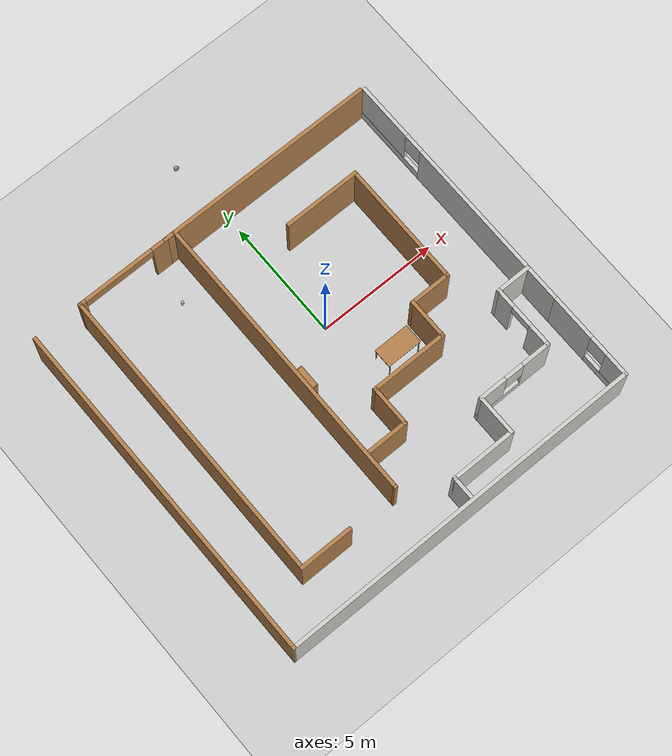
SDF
<sdf version="1.6">
 <world name="default">
  <model name="ground_plane">
   <static>1</static>
   <link name="link">
    <collision name="collision">
     <geometry><plane><normal>0 0 1</normal><size>100 100</size></plane></geometry>
     <surface><friction><ode><mu>100</mu><mu2>50</mu2></ode></friction></surface>
    </collision>
    <visual name="visual">
     <cast_shadows>0</cast_shadows>
     <geometry><plane><normal>0 0 1</normal><size>100 100</size></plane></geometry>
     <material>
      <script><uri>file://media/materials/scripts/gazebo.material</uri><name>Gazebo/Grey</name></script>
     </material>
    </visual>
   </link>
  </model>
  <model name="beer">
   <link name="link">
    <pose>0 0 0.115 0 -0 0</pose>
    <inertial>
     <mass>0.39</mass>
     <inertia><ixx>0.00058</ixx><ixy>0</ixy><ixz>0</ixz><iyy>0.00058</iyy><iyz>0</iyz><izz>0.00019</izz></inertia>
    </inertial>
    <collision name="collision">
     <geometry><cylinder><radius>0.055</radius><length>0.23</length></cylinder></geometry>
    </collision>
    <visual name="visual">
     <geometry><cylinder><radius>0.055</radius><length>0.23</length></cylinder></geometry>
     <material>
      <script>
       <uri>model://beer/materials/scripts</uri>
       <uri>model://beer/materials/textures</uri>
       <name>Beer/Diffuse</name>
      </script>
     </material>
    </visual>
   </link>
   <pose>-3.40388 4.09892 -2e-06 0 0 -5.8e-05</pose>
  </model>
  <model name="table">
   <static>1</static>
   <link name="link">
    <collision name="surface">
     <pose>0 0 1 0 -0 0</pose>
     <geometry><box><size>1.5 0.8 0.03</size></box></geometry>
     <surface><friction><ode><mu>0.6</mu><mu2>0.6</mu2></ode></friction></surface>
    </collision>
    <visual name="visual1">
     <pose>0 0 1 0 -0 0</pose>
     <geometry><box><size>1.5 0.8 0.03</size></box></geometry>
     <material>
      <script><uri>file://media/materials/scripts/gazebo.material</uri><name>Gazebo/Wood</name></script>
     </material>
    </visual>
    <collision name="front_left_leg">
     <pose>0.68 0.38 0.5 0 -0 0</pose>
     <geometry><cylinder><radius>0.02</radius><length>1</length></cylinder></geometry>
    </collision>
    <visual name="front_left_leg">
     <pose>0.68 0.38 0.5 0 -0 0</pose>
     <geometry><cylinder><radius>0.02</radius><length>1</length></cylinder></geometry>
     <material>
      <script><uri>file://media/materials/scripts/gazebo.material</uri><name>Gazebo/Grey</name></script>
     </material>
    </visual>
    <collision name="front_right_leg">
     <pose>0.68 -0.38 0.5 0 -0 0</pose>
     <geometry><cylinder><radius>0.02</radius><length>1</length></cylinder></geometry>
    </collision>
    <visual name="front_right_leg">
     <pose>0.68 -0.38 0.5 0 -0 0</pose>
     <geometry><cylinder><radius>0.02</radius><length>1</length></cylinder></geometry>
     <material>
      <script><uri>file://media/materials/scripts/gazebo.material</uri><name>Gazebo/Grey</name></script>
     </material>
    </visual>
    <collision name="back_right_leg">
     <pose>-0.68 -0.38 0.5 0 -0 0</pose>
     <geometry><cylinder><radius>0.02</radius><length>1</length></cylinder></geometry>
    </collision>
    <visual name="back_right_leg">
     <pose>-0.68 -0.38 0.5 0 -0 0</pose>
     <geometry><cylinder><radius>0.02</radius><length>1</length></cylinder></geometry>
     <material>
      <script><uri>file://media/materials/scripts/gazebo.material</uri><name>Gazebo/Grey</name></script>
     </material>
    </visual>
    <collision name="back_left_leg">
     <pose>-0.68 0.38 0.5 0 -0 0</pose>
     <geometry><cylinder><radius>0.02</radius><length>1</length></cylinder></geometry>
    </collision>
    <visual name="back_left_leg">
     <pose>-0.68 0.38 0.5 0 -0 0</pose>
     <geometry><cylinder><radius>0.02</radius><length>1</length></cylinder></geometry>
     <material>
      <script><uri>file://media/materials/scripts/gazebo.material</uri><name>Gazebo/Grey</name></script>
     </material>
    </visual>
   </link>
   <pose>1.37155 -2.41837 0 0 -0 0</pose>
  </model>
  <model name="bookshelf">
   <link name="link">
    <pose>0 0 0 0 -0 1.5707</pose>
    <inertial>
     <mass>1</mass>
     <inertia><ixx>1</ixx><ixy>0</ixy><ixz>0</ixz><iyy>1</iyy><iyz>0</iyz><izz>1</izz></inertia>
    </inertial>
    <visual name="visual1">
     <pose>0 0.005 0.6 0 -0 0</pose>
     <geometry><box><size>0.9 0.01 1.2</size></box></geometry>
     <material>
      <script><uri>file://media/materials/scripts/gazebo.material</uri><name>Gazebo/Wood</name></script>
      <shader type="pixel"><normal_map>__default__</normal_map></shader>
      <ambient>1 1 1 1</ambient>
      <diffuse>1 1 1 1</diffuse>
      <specular>0.2 0.2 0.2 1</specular>
      <emissive>0 0 0 1</emissive>
     </material>
    </visual>
    <visual name="visual2">
     <pose>0.45 -0.195 0.6 0 -0 0</pose>
     <geometry><box><size>0.02 0.4 1.2</size></box></geometry>
     <material>
      <script><uri>file://media/materials/scripts/gazebo.material</uri><name>Gazebo/Wood</name></script>
      <shader type="pixel"><normal_map>__default__</normal_map></shader>
      <ambient>1 1 1 1</ambient>
      <diffuse>1 1 1 1</diffuse>
      <specular>0.2 0.2 0.2 1</specular>
      <emissive>0 0 0 1</emissive>
     </material>
    </visual>
    <visual name="visual3">
     <pose>-0.45 -0.195 0.6 0 -0 0</pose>
     <geometry><box><size>0.02 0.4 1.2</size></box></geometry>
     <material>
      <script><uri>file://media/materials/scripts/gazebo.material</uri><name>Gazebo/Wood</name></script>
      <shader type="pixel"><normal_map>__default__</normal_map></shader>
      <ambient>1 1 1 1</ambient>
      <diffuse>1 1 1 1</diffuse>
      <specular>0.2 0.2 0.2 1</specular>
      <emissive>0 0 0 1</emissive>
     </material>
    </visual>
    <visual name="visual4">
     <pose>0 -0.195 0.03 0 -0 0</pose>
     <geometry><box><size>0.88 0.4 0.06</size></box></geometry>
     <material>
      <script><uri>file://media/materials/scripts/gazebo.material</uri><name>Gazebo/Wood</name></script>
      <shader type="pixel"><normal_map>__default__</normal_map></shader>
      <ambient>1 1 1 1</ambient>
      <diffuse>1 1 1 1</diffuse>
      <specular>0.2 0.2 0.2 1</specular>
      <emissive>0 0 0 1</emissive>
     </material>
    </visual>
    <visual name="visual5">
     <pose>0 -0.195 1.19 0 -0 0</pose>
     <geometry><box><size>0.88 0.4 0.02</size></box></geometry>
     <material>
      <script><uri>file://media/materials/scripts/gazebo.material</uri><name>Gazebo/Wood</name></script>
      <shader type="pixel"><normal_map>__default__</normal_map></shader>
      <ambient>1 1 1 1</ambient>
      <diffuse>1 1 1 1</diffuse>
      <specular>0.2 0.2 0.2 1</specular>
      <emissive>0 0 0 1</emissive>
     </material>
    </visual>
    <visual name="visual6">
     <pose>0 -0.195 0.43 0 -0 0</pose>
     <geometry><box><size>0.88 0.4 0.02</size></box></geometry>
     <material>
      <script><uri>file://media/materials/scripts/gazebo.material</uri><name>Gazebo/Wood</name></script>
      <shader type="pixel"><normal_map>__default__</normal_map></shader>
      <ambient>1 1 1 1</ambient>
      <diffuse>1 1 1 1</diffuse>
      <specular>0.2 0.2 0.2 1</specular>
      <emissive>0 0 0 1</emissive>
     </material>
    </visual>
    <visual name="visual7">
     <pose>0 -0.195 0.8 0 -0 0</pose>
     <geometry><box><size>0.88 0.4 0.02</size></box></geometry>
     <material>
      <script><uri>file://media/materials/scripts/gazebo.material</uri><name>Gazebo/Wood</name></script>
      <shader type="pixel"><normal_map>__default__</normal_map></shader>
      <ambient>1 1 1 1</ambient>
      <diffuse>1 1 1 1</diffuse>
      <specular>0.2 0.2 0.2 1</specular>
      <emissive>0 0 0 1</emissive>
     </material>
    </visual>
    <collision name="back">
     <pose>0 0.005 0.6 0 -0 0</pose>
     <geometry><box><size>0.9 0.01 1.2</size></box></geometry>
     <surface>
      <friction>
       <ode><mu>1</mu><mu2>1</mu2><fdir1>0 0 0</fdir1><slip1>0</slip1><slip2>0</slip2></ode>
       <torsional>
        <coefficient>1</coefficient>
        <patch_radius>0</patch_radius>
        <surface_radius>0</surface_radius>
        <use_patch_radius>1</use_patch_radius>
        <ode><slip>0</slip></ode>
       </torsional>
      </friction>
      <bounce><restitution_coefficient>0</restitution_coefficient><threshold>1e+06</threshold></bounce>
      <contact>
       <collide_without_contact>0</collide_without_contact>
       <collide_without_contact_bitmask>1</collide_without_contact_bitmask>
       <collide_bitmask>1</collide_bitmask>
       <ode>
        <soft_cfm>0</soft_cfm>
        <soft_erp>0.2</soft_erp>
        <kp>1e+13</kp>
        <kd>1</kd>
        <max_vel>0.01</max_vel>
        <min_depth>0</min_depth>
       </ode>
       <bullet>
        <split_impulse>1</split_impulse>
        <split_impulse_penetration_threshold>-0.01</split_impulse_penetration_threshold>
        <soft_cfm>0</soft_cfm>
        <soft_erp>0.2</soft_erp>
        <kp>1e+13</kp>
        <kd>1</kd>
       </bullet>
      </contact>
     </surface>
    </collision>
    <collision name="left_side">
     <pose>0.45 -0.195 0.6 0 -0 0</pose>
     <geometry><box><size>0.02 0.4 1.2</size></box></geometry>
     <surface>
      <friction>
       <ode><mu>1</mu><mu2>1</mu2><fdir1>0 0 0</fdir1><slip1>0</slip1><slip2>0</slip2></ode>
       <torsional>
        <coefficient>1</coefficient>
        <patch_radius>0</patch_radius>
        <surface_radius>0</surface_radius>
        <use_patch_radius>1</use_patch_radius>
        <ode><slip>0</slip></ode>
       </torsional>
      </friction>
      <bounce><restitution_coefficient>0</restitution_coefficient><threshold>1e+06</threshold></bounce>
      <contact>
       <collide_without_contact>0</collide_without_contact>
       <collide_without_contact_bitmask>1</collide_without_contact_bitmask>
       <collide_bitmask>1</collide_bitmask>
       <ode>
        <soft_cfm>0</soft_cfm>
        <soft_erp>0.2</soft_erp>
        <kp>1e+13</kp>
        <kd>1</kd>
        <max_vel>0.01</max_vel>
        <min_depth>0</min_depth>
       </ode>
       <bullet>
        <split_impulse>1</split_impulse>
        <split_impulse_penetration_threshold>-0.01</split_impulse_penetration_threshold>
        <soft_cfm>0</soft_cfm>
        <soft_erp>0.2</soft_erp>
        <kp>1e+13</kp>
        <kd>1</kd>
       </bullet>
      </contact>
     </surface>
    </collision>
    <collision name="right_side">
     <pose>-0.45 -0.195 0.6 0 -0 0</pose>
     <geometry><box><size>0.02 0.4 1.2</size></box></geometry>
     <surface>
      <friction>
       <ode><mu>1</mu><mu2>1</mu2><fdir1>0 0 0</fdir1><slip1>0</slip1><slip2>0</slip2></ode>
       <torsional>
        <coefficient>1</coefficient>
        <patch_radius>0</patch_radius>
        <surface_radius>0</surface_radius>
        <use_patch_radius>1</use_patch_radius>
        <ode><slip>0</slip></ode>
       </torsional>
      </friction>
      <bounce><restitution_coefficient>0</restitution_coefficient><threshold>1e+06</threshold></bounce>
      <contact>
       <collide_without_contact>0</collide_without_contact>
       <collide_without_contact_bitmask>1</collide_without_contact_bitmask>
       <collide_bitmask>1</collide_bitmask>
       <ode>
        <soft_cfm>0</soft_cfm>
        <soft_erp>0.2</soft_erp>
        <kp>1e+13</kp>
        <kd>1</kd>
        <max_vel>0.01</max_vel>
        <min_depth>0</min_depth>
       </ode>
       <bullet>
        <split_impulse>1</split_impulse>
        <split_impulse_penetration_threshold>-0.01</split_impulse_penetration_threshold>
        <soft_cfm>0</soft_cfm>
        <soft_erp>0.2</soft_erp>
        <kp>1e+13</kp>
        <kd>1</kd>
       </bullet>
      </contact>
     </surface>
    </collision>
    <collision name="high_shelf">
     <pose>0 -0.195 0.8 0 -0 0</pose>
     <geometry><box><size>0.88 0.4 0.02</size></box></geometry>
     <surface>
      <friction>
       <ode><mu>1</mu><mu2>1</mu2><fdir1>0 0 0</fdir1><slip1>0</slip1><slip2>0</slip2></ode>
       <torsional>
        <coefficient>1</coefficient>
        <patch_radius>0</patch_radius>
        <surface_radius>0</surface_radius>
        <use_patch_radius>1</use_patch_radius>
        <ode><slip>0</slip></ode>
       </torsional>
      </friction>
      <bounce><restitution_coefficient>0</restitution_coefficient><threshold>1e+06</threshold></bounce>
      <contact>
       <collide_without_contact>0</collide_without_contact>
       <collide_without_contact_bitmask>1</collide_without_contact_bitmask>
       <collide_bitmask>1</collide_bitmask>
       <ode>
        <soft_cfm>0</soft_cfm>
        <soft_erp>0.2</soft_erp>
        <kp>1e+13</kp>
        <kd>1</kd>
        <max_vel>0.01</max_vel>
        <min_depth>0</min_depth>
       </ode>
       <bullet>
        <split_impulse>1</split_impulse>
        <split_impulse_penetration_threshold>-0.01</split_impulse_penetration_threshold>
        <soft_cfm>0</soft_cfm>
        <soft_erp>0.2</soft_erp>
        <kp>1e+13</kp>
        <kd>1</kd>
       </bullet>
      </contact>
     </surface>
    </collision>
    <collision name="bottom">
     <pose>0 -0.195 0.03 0 -0 0</pose>
     <geometry><box><size>0.88 0.4 0.06</size></box></geometry>
     <surface>
      <friction>
       <ode><mu>1</mu><mu2>1</mu2><fdir1>0 0 0</fdir1><slip1>0</slip1><slip2>0</slip2></ode>
       <torsional>
        <coefficient>1</coefficient>
        <patch_radius>0</patch_radius>
        <surface_radius>0</surface_radius>
        <use_patch_radius>1</use_patch_radius>
        <ode><slip>0</slip></ode>
       </torsional>
      </friction>
      <bounce><restitution_coefficient>0</restitution_coefficient><threshold>1e+06</threshold></bounce>
      <contact>
       <collide_without_contact>0</collide_without_contact>
       <collide_without_contact_bitmask>1</collide_without_contact_bitmask>
       <collide_bitmask>1</collide_bitmask>
       <ode>
        <soft_cfm>0</soft_cfm>
        <soft_erp>0.2</soft_erp>
        <kp>1e+13</kp>
        <kd>1</kd>
        <max_vel>0.01</max_vel>
        <min_depth>0</min_depth>
       </ode>
       <bullet>
        <split_impulse>1</split_impulse>
        <split_impulse_penetration_threshold>-0.01</split_impulse_penetration_threshold>
        <soft_cfm>0</soft_cfm>
        <soft_erp>0.2</soft_erp>
        <kp>1e+13</kp>
        <kd>1</kd>
       </bullet>
      </contact>
     </surface>
    </collision>
    <collision name="top">
     <pose>0 -0.195 1.19 0 -0 0</pose>
     <geometry><box><size>0.88 0.4 0.02</size></box></geometry>
     <surface>
      <friction>
       <ode><mu>1</mu><mu2>1</mu2><fdir1>0 0 0</fdir1><slip1>0</slip1><slip2>0</slip2></ode>
       <torsional>
        <coefficient>1</coefficient>
        <patch_radius>0</patch_radius>
        <surface_radius>0</surface_radius>
        <use_patch_radius>1</use_patch_radius>
        <ode><slip>0</slip></ode>
       </torsional>
      </friction>
      <bounce><restitution_coefficient>0</restitution_coefficient><threshold>1e+06</threshold></bounce>
      <contact>
       <collide_without_contact>0</collide_without_contact>
       <collide_without_contact_bitmask>1</collide_without_contact_bitmask>
       <collide_bitmask>1</collide_bitmask>
       <ode>
        <soft_cfm>0</soft_cfm>
        <soft_erp>0.2</soft_erp>
        <kp>1e+13</kp>
        <kd>1</kd>
        <max_vel>0.01</max_vel>
        <min_depth>0</min_depth>
       </ode>
       <bullet>
        <split_impulse>1</split_impulse>
        <split_impulse_penetration_threshold>-0.01</split_impulse_penetration_threshold>
        <soft_cfm>0</soft_cfm>
        <soft_erp>0.2</soft_erp>
        <kp>1e+13</kp>
        <kd>1</kd>
       </bullet>
      </contact>
     </surface>
    </collision>
    <collision name="low_shelf">
     <pose>0 -0.195 0.43 0 -0 0</pose>
     <geometry><box><size>0.88 0.4 0.02</size></box></geometry>
     <surface>
      <friction>
       <ode><mu>1</mu><mu2>1</mu2><fdir1>0 0 0</fdir1><slip1>0</slip1><slip2>0</slip2></ode>
       <torsional>
        <coefficient>1</coefficient>
        <patch_radius>0</patch_radius>
        <surface_radius>0</surface_radius>
        <use_patch_radius>1</use_patch_radius>
        <ode><slip>0</slip></ode>
       </torsional>
      </friction>
      <bounce><restitution_coefficient>0</restitution_coefficient><threshold>1e+06</threshold></bounce>
      <contact>
       <collide_without_contact>0</collide_without_contact>
       <collide_without_contact_bitmask>1</collide_without_contact_bitmask>
       <collide_bitmask>1</collide_bitmask>
       <ode>
        <soft_cfm>0</soft_cfm>
        <soft_erp>0.2</soft_erp>
        <kp>1e+13</kp>
        <kd>1</kd>
        <max_vel>0.01</max_vel>
        <min_depth>0</min_depth>
       </ode>
       <bullet>
        <split_impulse>1</split_impulse>
        <split_impulse_penetration_threshold>-0.01</split_impulse_penetration_threshold>
        <soft_cfm>0</soft_cfm>
        <soft_erp>0.2</soft_erp>
        <kp>1e+13</kp>
        <kd>1</kd>
       </bullet>
      </contact>
     </surface>
    </collision>
   </link>
   <static>1</static>
   <pose>-2.19171 -1.27515 0 0 -0 0</pose>
  </model>
  <model name="my_ball">
   <link name="link">
    <inertial>
     <mass>1</mass>
     <inertia><ixx>0.1</ixx><ixy>0</ixy><ixz>0</ixz><iyy>0.1</iyy><iyz>0</iyz><izz>0.1</izz></inertia>
    </inertial>
    <visual name="visual">
     <geometry><sphere><radius>0.1</radius></sphere></geometry>
     <material>
      <script><name>Gazebo/Grey</name><uri>file://media/materials/scripts/gazebo.material</uri></script>
      <shader type="pixel"><normal_map>__default__</normal_map></shader>
      <ambient>1 1 1 1</ambient>
      <diffuse>1 1 1 1</diffuse>
      <specular>1 1 1 1</specular>
      <emissive>1 1 1 1</emissive>
     </material>
    </visual>
    <collision name="collision">
     <geometry><sphere><radius>0.1</radius></sphere></geometry>
     <surface>
      <friction>
       <ode><mu>1</mu><mu2>1</mu2><fdir1>0 0 0</fdir1><slip1>0</slip1><slip2>0</slip2></ode>
       <torsional>
        <coefficient>1</coefficient>
        <patch_radius>0</patch_radius>
        <surface_radius>0</surface_radius>
        <use_patch_radius>1</use_patch_radius>
        <ode><slip>0</slip></ode>
       </torsional>
      </friction>
      <bounce><restitution_coefficient>0</restitution_coefficient><threshold>1e+06</threshold></bounce>
      <contact>
       <collide_without_contact>0</collide_without_contact>
       <collide_without_contact_bitmask>1</collide_without_contact_bitmask>
       <collide_bitmask>1</collide_bitmask>
       <ode>
        <soft_cfm>0</soft_cfm>
        <soft_erp>0.2</soft_erp>
        <kp>1e+13</kp>
        <kd>1</kd>
        <max_vel>0.01</max_vel>
        <min_depth>0</min_depth>
       </ode>
       <bullet>
        <split_impulse>1</split_impulse>
        <split_impulse_penetration_threshold>-0.01</split_impulse_penetration_threshold>
        <soft_cfm>0</soft_cfm>
        <soft_erp>0.2</soft_erp>
        <kp>1e+13</kp>
        <kd>1</kd>
       </bullet>
      </contact>
     </surface>
    </collision>
   </link>
   <static>0</static>
   <pose>-0.259784 8.40931 0.1 0 -0 0</pose>
  </model>
  <model name="my_building_0">
   <pose>-1.06186 -1.50625 0 0 -0 0</pose>
   <link name="Wall_1">
    <collision name="Wall_1_Collision">
     <geometry><box><size>1.75 0.15 2.5</size></box></geometry>
     <pose>0 0 1.25 0 -0 0</pose>
    </collision>
    <visual name="Wall_1_Visual">
     <pose>0 0 1.25 0 -0 0</pose>
     <geometry><box><size>1.75 0.15 2.5</size></box></geometry>
     <material>
      <script><uri>file://media/materials/scripts/gazebo.material</uri><name>Gazebo/Wood</name></script>
      <ambient>1 1 1 1</ambient>
     </material>
     <meta><layer>0</layer></meta>
    </visual>
    <pose>3.56186 -1.14375 0 0 0 -1.5708</pose>
   </link>
   <link name="Wall_2">
    <collision name="Wall_2_Collision">
     <geometry><box><size>3.25 0.15 2.5</size></box></geometry>
     <pose>0 0 1.25 0 -0 0</pose>
    </collision>
    <visual name="Wall_2_Visual">
     <pose>0 0 1.25 0 -0 0</pose>
     <geometry><box><size>3.25 0.15 2.5</size></box></geometry>
     <material>
      <script><uri>file://media/materials/scripts/gazebo.material</uri><name>Gazebo/Wood</name></script>
      <ambient>1 1 1 1</ambient>
     </material>
     <meta><layer>0</layer></meta>
    </visual>
    <pose>2.01186 -1.94375 0 0 -0 3.14159</pose>
   </link>
   <link name="Wall_23">
    <collision name="Wall_23_Collision">
     <geometry><box><size>9.25 0.15 2.5</size></box></geometry>
     <pose>0 0 1.25 0 -0 0</pose>
    </collision>
    <visual name="Wall_23_Visual">
     <pose>0 0 1.25 0 -0 0</pose>
     <geometry><box><size>9.25 0.15 2.5</size></box></geometry>
     <material>
      <script><uri>file://media/materials/scripts/gazebo.material</uri><name>Gazebo/Wood</name></script>
      <ambient>1 1 1 1</ambient>
     </material>
     <meta><layer>0</layer></meta>
    </visual>
    <pose>2.83826 7.14375 0 0 -0 0</pose>
   </link>
   <link name="Wall_25">
    <pose>7.56186 1.75625 0 0 -0 1.5708</pose>
    <visual name="Wall_25_Visual_0">
     <pose>-1.62787 0 1.25 0 -0 0</pose>
     <geometry><box><size>7.49425 0.15 2.5</size></box></geometry>
     <material>
      <script><uri>file://media/materials/scripts/gazebo.material</uri><name>Gazebo/CeilingTiled</name></script>
      <ambient>0.435294 0.796078 0.67451 1</ambient>
     </material>
     <meta><layer>0</layer></meta>
    </visual>
    <collision name="Wall_25_Collision_0">
     <geometry><box><size>7.49425 0.15 2.5</size></box></geometry>
     <pose>-1.62787 0 1.25 0 -0 0</pose>
    </collision>
    <visual name="Wall_25_Visual_1">
     <pose>3.74713 0 0.25 0 -0 0</pose>
     <geometry><box><size>3.25575 0.15 0.5</size></box></geometry>
     <material>
      <script><uri>file://media/materials/scripts/gazebo.material</uri><name>Gazebo/CeilingTiled</name></script>
      <ambient>0.435294 0.796078 0.67451 1</ambient>
     </material>
     <meta><layer>0</layer></meta>
    </visual>
    <collision name="Wall_25_Collision_1">
     <geometry><box><size>3.25575 0.15 0.5</size></box></geometry>
     <pose>3.74713 0 0.25 0 -0 0</pose>
    </collision>
    <visual name="Wall_25_Visual_2">
     <pose>4.14713 0 1.5 0 -0 0</pose>
     <geometry><box><size>2.45575 0.15 2</size></box></geometry>
     <material>
      <script><uri>file://media/materials/scripts/gazebo.material</uri><name>Gazebo/CeilingTiled</name></script>
      <ambient>0.435294 0.796078 0.67451 1</ambient>
     </material>
     <meta><layer>0</layer></meta>
    </visual>
    <collision name="Wall_25_Collision_2">
     <geometry><box><size>2.45575 0.15 2</size></box></geometry>
     <pose>4.14713 0 1.5 0 -0 0</pose>
    </collision>
    <visual name="Wall_25_Visual_3">
     <pose>2.51925 0 1.9 0 -0 0</pose>
     <geometry><box><size>0.8 0.15 1.2</size></box></geometry>
     <material>
      <script><uri>file://media/materials/scripts/gazebo.material</uri><name>Gazebo/CeilingTiled</name></script>
      <ambient>0.435294 0.796078 0.67451 1</ambient>
     </material>
     <meta><layer>0</layer></meta>
    </visual>
    <collision name="Wall_25_Collision_3">
     <geometry><box><size>0.8 0.15 1.2</size></box></geometry>
     <pose>2.51925 0 1.9 0 -0 0</pose>
    </collision>
   </link>
   <link name="Wall_3">
    <collision name="Wall_3_Collision">
     <geometry><box><size>1.75 0.15 2.5</size></box></geometry>
     <pose>0 0 1.25 0 -0 0</pose>
    </collision>
    <visual name="Wall_3_Visual">
     <pose>0 0 1.25 0 -0 0</pose>
     <geometry><box><size>1.75 0.15 2.5</size></box></geometry>
     <material>
      <script><uri>file://media/materials/scripts/gazebo.material</uri><name>Gazebo/Wood</name></script>
      <ambient>1 1 1 1</ambient>
     </material>
     <meta><layer>0</layer></meta>
    </visual>
    <pose>0.461862 -2.74375 0 0 0 -1.5708</pose>
   </link>
   <link name="Wall_32">
    <collision name="Wall_32_Collision">
     <geometry><box><size>14.4375 0.15 2.5</size></box></geometry>
     <pose>0 0 1.25 0 -0 0</pose>
    </collision>
    <visual name="Wall_32_Visual">
     <pose>0 0 1.25 0 -0 0</pose>
     <geometry><box><size>14.4375 0.15 2.5</size></box></geometry>
     <material>
      <script><uri>file://media/materials/scripts/gazebo.material</uri><name>Gazebo/Wood</name></script>
      <ambient>1 1 1 1</ambient>
     </material>
     <meta><layer>0</layer></meta>
    </visual>
    <pose>-7.54994 0 0 0 0 -1.56914</pose>
   </link>
   <link name="Wall_36">
    <pose>-3.63674 7.14375 0 0 -0 3.14159</pose>
    <visual name="Wall_36_Visual_0">
     <pose>-1.65447 0 1.25 0 -0 0</pose>
     <geometry><box><size>0.691061 0.15 2.5</size></box></geometry>
     <material>
      <script><uri>file://media/materials/scripts/gazebo.material</uri><name>Gazebo/Wood</name></script>
      <ambient>1 1 1 1</ambient>
     </material>
     <meta><layer>0</layer></meta>
    </visual>
    <collision name="Wall_36_Collision_0">
     <geometry><box><size>0.691061 0.15 2.5</size></box></geometry>
     <pose>-1.65447 0 1.25 0 -0 0</pose>
    </collision>
    <visual name="Wall_36_Visual_1">
     <pose>1.84553 0 1.25 0 -0 0</pose>
     <geometry><box><size>0.308939 0.15 2.5</size></box></geometry>
     <material>
      <script><uri>file://media/materials/scripts/gazebo.material</uri><name>Gazebo/Wood</name></script>
      <ambient>1 1 1 1</ambient>
     </material>
     <meta><layer>0</layer></meta>
    </visual>
    <collision name="Wall_36_Collision_1">
     <geometry><box><size>0.308939 0.15 2.5</size></box></geometry>
     <pose>1.84553 0 1.25 0 -0 0</pose>
    </collision>
    <visual name="Wall_36_Visual_2">
     <pose>0.191061 0 2.25 0 -0 0</pose>
     <geometry><box><size>3 0.15 0.5</size></box></geometry>
     <material>
      <script><uri>file://media/materials/scripts/gazebo.material</uri><name>Gazebo/Wood</name></script>
      <ambient>1 1 1 1</ambient>
     </material>
     <meta><layer>0</layer></meta>
    </visual>
    <collision name="Wall_36_Collision_2">
     <geometry><box><size>3 0.15 0.5</size></box></geometry>
     <pose>0.191061 0 2.25 0 -0 0</pose>
    </collision>
   </link>
   <link name="Wall_37">
    <collision name="Wall_37_Collision">
     <geometry><box><size>12.5 0.15 2.5</size></box></geometry>
     <pose>0 0 1.25 0 -0 0</pose>
    </collision>
    <visual name="Wall_37_Visual">
     <pose>0 0 1.25 0 -0 0</pose>
     <geometry><box><size>12.5 0.15 2.5</size></box></geometry>
     <material>
      <script><uri>file://media/materials/scripts/gazebo.material</uri><name>Gazebo/Wood</name></script>
      <ambient>1 1 1 1</ambient>
     </material>
     <meta><layer>0</layer></meta>
    </visual>
    <pose>-5.56174 0.968755 0 0 0 -1.5708</pose>
   </link>
   <link name="Wall_43">
    <collision name="Wall_43_Collision">
     <geometry><box><size>12.25 0.15 2.5</size></box></geometry>
     <pose>0 0 1.25 0 -0 0</pose>
    </collision>
    <visual name="Wall_43_Visual">
     <pose>0 0 1.25 0 -0 0</pose>
     <geometry><box><size>12.25 0.15 2.5</size></box></geometry>
     <material>
      <script><uri>file://media/materials/scripts/gazebo.material</uri><name>Gazebo/Wood</name></script>
      <ambient>1 1 1 1</ambient>
     </material>
     <meta><layer>0</layer></meta>
    </visual>
    <pose>-1.27488 1.08986 0 0 0 -1.5708</pose>
   </link>
   <link name="Wall_44">
    <collision name="Wall_44_Collision">
     <geometry><box><size>0.25 0.15 2.5</size></box></geometry>
     <pose>0 0 1.25 0 -0 0</pose>
    </collision>
    <visual name="Wall_44_Visual">
     <pose>0 0 1.25 0 -0 0</pose>
     <geometry><box><size>0.25 0.15 2.5</size></box></geometry>
     <material>
      <script><uri>file://media/materials/scripts/gazebo.material</uri><name>Gazebo/Wood</name></script>
      <ambient>1 1 1 1</ambient>
     </material>
     <meta><layer>0</layer></meta>
    </visual>
    <pose>-1.27488 -5.01014 0 0 0 -1.5708</pose>
   </link>
   <link name="Wall_46">
    <collision name="Wall_46_Collision">
     <geometry><box><size>1.75 0.15 2.5</size></box></geometry>
     <pose>0 0 1.25 0 -0 0</pose>
    </collision>
    <visual name="Wall_46_Visual">
     <pose>0 0 1.25 0 -0 0</pose>
     <geometry><box><size>1.75 0.15 2.5</size></box></geometry>
     <material>
      <script><uri>file://media/materials/scripts/gazebo.material</uri><name>Gazebo/Wood</name></script>
      <ambient>1 1 1 1</ambient>
     </material>
     <meta><layer>0</layer></meta>
    </visual>
    <pose>-0.338138 -3.54375 0 0 -0 3.14159</pose>
   </link>
   <link name="Wall_5">
    <pose>7.56186 -5.34375 0 0 0 -1.5708</pose>
    <visual name="Wall_5_Visual_0">
     <pose>-0.916236 0 1.25 0 -0 0</pose>
     <geometry><box><size>1.91753 0.15 2.5</size></box></geometry>
     <material>
      <script><uri>file://media/materials/scripts/gazebo.material</uri><name>Gazebo/CeilingTiled</name></script>
      <ambient>0.435294 0.796078 0.67451 1</ambient>
     </material>
     <meta><layer>0</layer></meta>
    </visual>
    <collision name="Wall_5_Collision_0">
     <geometry><box><size>1.91753 0.15 2.5</size></box></geometry>
     <pose>-0.916236 0 1.25 0 -0 0</pose>
    </collision>
    <visual name="Wall_5_Visual_1">
     <pose>0.958764 0 0.25 0 -0 0</pose>
     <geometry><box><size>1.83247 0.15 0.5</size></box></geometry>
     <material>
      <script><uri>file://media/materials/scripts/gazebo.material</uri><name>Gazebo/CeilingTiled</name></script>
      <ambient>0.435294 0.796078 0.67451 1</ambient>
     </material>
     <meta><layer>0</layer></meta>
    </visual>
    <collision name="Wall_5_Collision_1">
     <geometry><box><size>1.83247 0.15 0.5</size></box></geometry>
     <pose>0.958764 0 0.25 0 -0 0</pose>
    </collision>
    <visual name="Wall_5_Visual_2">
     <pose>1.35876 0 1.5 0 -0 0</pose>
     <geometry><box><size>1.03247 0.15 2</size></box></geometry>
     <material>
      <script><uri>file://media/materials/scripts/gazebo.material</uri><name>Gazebo/CeilingTiled</name></script>
      <ambient>0.435294 0.796078 0.67451 1</ambient>
     </material>
     <meta><layer>0</layer></meta>
    </visual>
    <collision name="Wall_5_Collision_2">
     <geometry><box><size>1.03247 0.15 2</size></box></geometry>
     <pose>1.35876 0 1.5 0 -0 0</pose>
    </collision>
    <visual name="Wall_5_Visual_3">
     <pose>0.442528 0 1.9 0 -0 0</pose>
     <geometry><box><size>0.8 0.15 1.2</size></box></geometry>
     <material>
      <script><uri>file://media/materials/scripts/gazebo.material</uri><name>Gazebo/CeilingTiled</name></script>
      <ambient>0.435294 0.796078 0.67451 1</ambient>
     </material>
     <meta><layer>0</layer></meta>
    </visual>
    <collision name="Wall_5_Collision_3">
     <geometry><box><size>0.8 0.15 1.2</size></box></geometry>
     <pose>0.442528 0 1.9 0 -0 0</pose>
    </collision>
   </link>
   <link name="Wall_50">
    <collision name="Wall_50_Collision">
     <geometry><box><size>1.75 0.15 2.5</size></box></geometry>
     <pose>0 0 1.25 0 -0 0</pose>
    </collision>
    <visual name="Wall_50_Visual">
     <pose>0 0 1.25 0 -0 0</pose>
     <geometry><box><size>1.75 0.15 2.5</size></box></geometry>
     <material>
      <script><uri>file://media/materials/scripts/gazebo.material</uri><name>Gazebo/Wood</name></script>
      <ambient>1 1 1 1</ambient>
     </material>
     <meta><layer>0</layer></meta>
    </visual>
    <pose>4.36186 -0.343754 0 0 -0 0</pose>
   </link>
   <link name="Wall_52">
    <collision name="Wall_52_Collision">
     <geometry><box><size>5.25 0.15 2.5</size></box></geometry>
     <pose>0 0 1.25 0 -0 0</pose>
    </collision>
    <visual name="Wall_52_Visual">
     <pose>0 0 1.25 0 -0 0</pose>
     <geometry><box><size>5.25 0.15 2.5</size></box></geometry>
     <material>
      <script><uri>file://media/materials/scripts/gazebo.material</uri><name>Gazebo/Wood</name></script>
      <ambient>1 1 1 1</ambient>
     </material>
     <meta><layer>0</layer></meta>
    </visual>
    <pose>5.16186 2.20625 0 0 -0 1.5708</pose>
   </link>
   <link name="Wall_53">
    <collision name="Wall_53_Collision">
     <geometry><box><size>3.25 0.15 2.5</size></box></geometry>
     <pose>0 0 1.25 0 -0 0</pose>
    </collision>
    <visual name="Wall_53_Visual">
     <pose>0 0 1.25 0 -0 0</pose>
     <geometry><box><size>3.25 0.15 2.5</size></box></geometry>
     <material>
      <script><uri>file://media/materials/scripts/gazebo.material</uri><name>Gazebo/Wood</name></script>
      <ambient>1 1 1 1</ambient>
     </material>
     <meta><layer>0</layer></meta>
    </visual>
    <pose>3.61186 4.75625 0 0 -0 3.14159</pose>
   </link>
   <link name="Wall_55">
    <collision name="Wall_55_Collision">
     <geometry><box><size>2.25 0.15 2.5</size></box></geometry>
     <pose>0 0 1.25 0 -0 0</pose>
    </collision>
    <visual name="Wall_55_Visual">
     <pose>0 0 1.25 0 -0 0</pose>
     <geometry><box><size>2.25 0.15 2.5</size></box></geometry>
     <material>
      <script><uri>file://media/materials/scripts/gazebo.material</uri><name>Gazebo/Wood</name></script>
      <ambient>1 1 1 1</ambient>
     </material>
     <meta><layer>0</layer></meta>
    </visual>
    <pose>-4.51174 -5.20625 0 0 -0 0</pose>
   </link>
   <link name="Wall_57">
    <collision name="Wall_57_Collision">
     <geometry><box><size>1.5 0.15 2.5</size></box></geometry>
     <pose>0 0 1.25 0 -0 0</pose>
    </collision>
    <visual name="Wall_57_Visual">
     <pose>0 0 1.25 0 -0 0</pose>
     <geometry><box><size>1.5 0.15 2.5</size></box></geometry>
     <material>
      <script><uri>file://media/materials/scripts/gazebo.material</uri><name>Gazebo/CeilingTiled</name></script>
      <ambient>0.435294 0.796078 0.67451 1</ambient>
     </material>
     <meta><layer>0</layer></meta>
    </visual>
    <pose>6.87348 -1.97273 0 0 -0 3.14159</pose>
   </link>
   <link name="Wall_58">
    <pose>6.19848 -3.27273 0 0 0 -1.5708</pose>
    <visual name="Wall_58_Visual_0">
     <pose>-0.947075 0 1.25 0 -0 0</pose>
     <geometry><box><size>0.855849 0.15 2.5</size></box></geometry>
     <material>
      <script><uri>file://media/materials/scripts/gazebo.material</uri><name>Gazebo/CeilingTiled</name></script>
      <ambient>0.435294 0.796078 0.67451 1</ambient>
     </material>
     <meta><layer>0</layer></meta>
    </visual>
    <collision name="Wall_58_Collision_0">
     <geometry><box><size>0.855849 0.15 2.5</size></box></geometry>
     <pose>-0.947075 0 1.25 0 -0 0</pose>
    </collision>
    <visual name="Wall_58_Visual_1">
     <pose>0.877925 0 1.25 0 -0 0</pose>
     <geometry><box><size>0.994151 0.15 2.5</size></box></geometry>
     <material>
      <script><uri>file://media/materials/scripts/gazebo.material</uri><name>Gazebo/CeilingTiled</name></script>
      <ambient>0.435294 0.796078 0.67451 1</ambient>
     </material>
     <meta><layer>0</layer></meta>
    </visual>
    <collision name="Wall_58_Collision_1">
     <geometry><box><size>0.994151 0.15 2.5</size></box></geometry>
     <pose>0.877925 0 1.25 0 -0 0</pose>
    </collision>
    <visual name="Wall_58_Visual_2">
     <pose>-0.069151 0 2.25 0 -0 0</pose>
     <geometry><box><size>0.9 0.15 0.5</size></box></geometry>
     <material>
      <script><uri>file://media/materials/scripts/gazebo.material</uri><name>Gazebo/CeilingTiled</name></script>
      <ambient>0.435294 0.796078 0.67451 1</ambient>
     </material>
     <meta><layer>0</layer></meta>
    </visual>
    <collision name="Wall_58_Collision_2">
     <geometry><box><size>0.9 0.15 0.5</size></box></geometry>
     <pose>-0.069151 0 2.25 0 -0 0</pose>
    </collision>
   </link>
   <link name="Wall_59">
    <pose>4.64848 -4.57273 0 0 -0 3.14159</pose>
    <visual name="Wall_59_Visual_0">
     <pose>-1.00009 0 1.25 0 -0 0</pose>
     <geometry><box><size>1.24981 0.15 2.5</size></box></geometry>
     <material>
      <script><uri>file://media/materials/scripts/gazebo.material</uri><name>Gazebo/CeilingTiled</name></script>
      <ambient>0.435294 0.796078 0.67451 1</ambient>
     </material>
     <meta><layer>0</layer></meta>
    </visual>
    <collision name="Wall_59_Collision_0">
     <geometry><box><size>1.24981 0.15 2.5</size></box></geometry>
     <pose>-1.00009 0 1.25 0 -0 0</pose>
    </collision>
    <visual name="Wall_59_Visual_1">
     <pose>0.624907 0 0.25 0 -0 0</pose>
     <geometry><box><size>2.00019 0.15 0.5</size></box></geometry>
     <material>
      <script><uri>file://media/materials/scripts/gazebo.material</uri><name>Gazebo/CeilingTiled</name></script>
      <ambient>0.435294 0.796078 0.67451 1</ambient>
     </material>
     <meta><layer>0</layer></meta>
    </visual>
    <collision name="Wall_59_Collision_1">
     <geometry><box><size>2.00019 0.15 0.5</size></box></geometry>
     <pose>0.624907 0 0.25 0 -0 0</pose>
    </collision>
    <visual name="Wall_59_Visual_2">
     <pose>1.02491 0 1.5 0 -0 0</pose>
     <geometry><box><size>1.20019 0.15 2</size></box></geometry>
     <material>
      <script><uri>file://media/materials/scripts/gazebo.material</uri><name>Gazebo/CeilingTiled</name></script>
      <ambient>0.435294 0.796078 0.67451 1</ambient>
     </material>
     <meta><layer>0</layer></meta>
    </visual>
    <collision name="Wall_59_Collision_2">
     <geometry><box><size>1.20019 0.15 2</size></box></geometry>
     <pose>1.02491 0 1.5 0 -0 0</pose>
    </collision>
    <visual name="Wall_59_Visual_3">
     <pose>0.024815 0 1.9 0 -0 0</pose>
     <geometry><box><size>0.8 0.15 1.2</size></box></geometry>
     <material>
      <script><uri>file://media/materials/scripts/gazebo.material</uri><name>Gazebo/CeilingTiled</name></script>
      <ambient>0.435294 0.796078 0.67451 1</ambient>
     </material>
     <meta><layer>0</layer></meta>
    </visual>
    <collision name="Wall_59_Collision_3">
     <geometry><box><size>0.8 0.15 1.2</size></box></geometry>
     <pose>0.024815 0 1.9 0 -0 0</pose>
    </collision>
   </link>
   <link name="Wall_6">
    <collision name="Wall_6_Collision">
     <geometry><box><size>15.25 0.15 2.5</size></box></geometry>
     <pose>0 0 1.25 0 -0 0</pose>
    </collision>
    <visual name="Wall_6_Visual">
     <pose>0 0 1.25 0 -0 0</pose>
     <geometry><box><size>15.25 0.15 2.5</size></box></geometry>
     <material>
      <script><uri>file://media/materials/scripts/gazebo.material</uri><name>Gazebo/CeilingTiled</name></script>
      <ambient>0.435294 0.796078 0.67451 1</ambient>
     </material>
     <meta><layer>0</layer></meta>
    </visual>
    <pose>0.011862 -7.14375 0 0 -0 3.14159</pose>
   </link>
   <link name="Wall_60">
    <collision name="Wall_60_Collision">
     <geometry><box><size>1.75 0.15 2.5</size></box></geometry>
     <pose>0 0 1.25 0 -0 0</pose>
    </collision>
    <visual name="Wall_60_Visual">
     <pose>0 0 1.25 0 -0 0</pose>
     <geometry><box><size>1.75 0.15 2.5</size></box></geometry>
     <material>
      <script><uri>file://media/materials/scripts/gazebo.material</uri><name>Gazebo/CeilingTiled</name></script>
      <ambient>0.435294 0.796078 0.67451 1</ambient>
     </material>
     <meta><layer>0</layer></meta>
    </visual>
    <pose>3.09848 -5.37273 0 0 0 -1.5708</pose>
   </link>
   <link name="Wall_61">
    <collision name="Wall_61_Collision">
     <geometry><box><size>2.75 0.15 2.5</size></box></geometry>
     <pose>0 0 1.25 0 -0 0</pose>
    </collision>
    <visual name="Wall_61_Visual">
     <pose>0 0 1.25 0 -0 0</pose>
     <geometry><box><size>2.75 0.15 2.5</size></box></geometry>
     <material>
      <script><uri>file://media/materials/scripts/gazebo.material</uri><name>Gazebo/CeilingTiled</name></script>
      <ambient>0.435294 0.796078 0.67451 1</ambient>
     </material>
     <meta><layer>0</layer></meta>
    </visual>
    <pose>1.79848 -6.17273 0 0 -0 3.14159</pose>
   </link>
   <link name="Wall_62">
    <collision name="Wall_62_Collision">
     <geometry><box><size>1 0.15 2.5</size></box></geometry>
     <pose>0 0 1.25 0 -0 0</pose>
    </collision>
    <visual name="Wall_62_Visual">
     <pose>0 0 1.25 0 -0 0</pose>
     <geometry><box><size>1 0.15 2.5</size></box></geometry>
     <material>
      <script><uri>file://media/materials/scripts/gazebo.material</uri><name>Gazebo/CeilingTiled</name></script>
      <ambient>0.435294 0.796078 0.67451 1</ambient>
     </material>
     <meta><layer>0</layer></meta>
    </visual>
    <pose>0.498477 -6.59773 0 0 0 -1.5708</pose>
   </link>
   <static>1</static>
  </model>
 </world>
</sdf>
